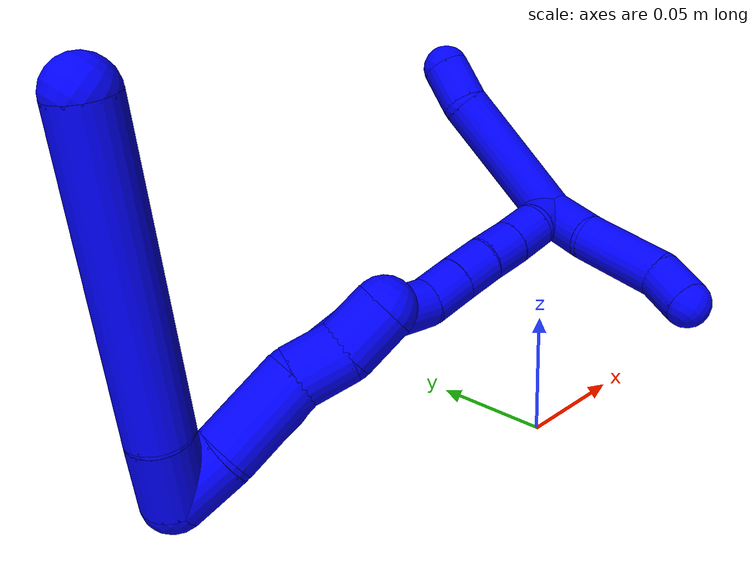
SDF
<sdf version="1.7">
 <world name="default">
  <model name="1">
   <static>0</static>
   <link name="1">
    <collision name="collision-cylinder-e_1_2_8">
     <pose>-0.011327 -0.003168 -0.008821 2.79678 -0.879542 -2.43264</pose>
     <geometry><cylinder><radius>0.0125</radius><length>0.029404</length></cylinder></geometry>
     <surface>
      <friction><ode><mu>1.16</mu><mu2>1.16</mu2><slip1>0</slip1><slip2>0</slip2></ode></friction>
      <contact><ode><kp>1e+06</kp><kd>1</kd><max_vel>0</max_vel><min_depth>0.001</min_depth></ode></contact>
     </surface>
    </collision>
    <visual name="visual-cylinder-e_1_2_8">
     <pose>-0.011327 -0.003168 -0.008821 2.79678 -0.879542 -2.43264</pose>
     <geometry><cylinder><radius>0.0125</radius><length>0.029404</length></cylinder></geometry>
     <material><ambient>0 0 1 1</ambient></material>
    </visual>
    <collision name="collision-cylinder-e_2_8_6">
     <pose>-0.064892 -0.025072 -0.056382 2.69113 -0.776067 -2.11982</pose>
     <geometry><cylinder><radius>0.0125</radius><length>0.120596</length></cylinder></geometry>
     <surface>
      <friction><ode><mu>1.16</mu><mu2>1.16</mu2><slip1>0</slip1><slip2>0</slip2></ode></friction>
      <contact><ode><kp>1e+06</kp><kd>1</kd><max_vel>0</max_vel><min_depth>0.001</min_depth></ode></contact>
     </surface>
    </collision>
    <visual name="visual-cylinder-e_2_8_6">
     <pose>-0.064892 -0.025072 -0.056382 2.69113 -0.776067 -2.11982</pose>
     <geometry><cylinder><radius>0.0125</radius><length>0.120596</length></cylinder></geometry>
     <material><ambient>0 0 1 1</ambient></material>
    </visual>
    <collision name="collision-cylinder-e_1_2_9">
     <pose>0.000558 0.002998 -0.011021 -2.87596 0.048785 -0.361239</pose>
     <geometry><cylinder><radius>0.0125</radius><length>0.02287</length></cylinder></geometry>
     <surface>
      <friction><ode><mu>1.16</mu><mu2>1.16</mu2><slip1>0</slip1><slip2>0</slip2></ode></friction>
      <contact><ode><kp>1e+06</kp><kd>1</kd><max_vel>0</max_vel><min_depth>0.001</min_depth></ode></contact>
     </surface>
    </collision>
    <visual name="visual-cylinder-e_1_2_9">
     <pose>0.000558 0.002998 -0.011021 -2.87596 0.048785 -0.361239</pose>
     <geometry><cylinder><radius>0.0125</radius><length>0.02287</length></cylinder></geometry>
     <material><ambient>0 0 1 1</ambient></material>
    </visual>
    <collision name="collision-cylinder-e_2_9_10">
     <pose>0.003449 0.007961 -0.039647 -3.03045 0.130971 -1.73466</pose>
     <geometry><cylinder><radius>0.0125</radius><length>0.035735</length></cylinder></geometry>
     <surface>
      <friction><ode><mu>1.16</mu><mu2>1.16</mu2><slip1>0</slip1><slip2>0</slip2></ode></friction>
      <contact><ode><kp>1e+06</kp><kd>1</kd><max_vel>0</max_vel><min_depth>0.001</min_depth></ode></contact>
     </surface>
    </collision>
    <visual name="visual-cylinder-e_2_9_10">
     <pose>0.003449 0.007961 -0.039647 -3.03045 0.130971 -1.73466</pose>
     <geometry><cylinder><radius>0.0125</radius><length>0.035735</length></cylinder></geometry>
     <material><ambient>0 0 1 1</ambient></material>
    </visual>
    <collision name="collision-cylinder-e_3_10_11">
     <pose>0.008307 0.013971 -0.06625 -2.71914 0.250564 -1.06213</pose>
     <geometry><cylinder><radius>0.0125</radius><length>0.020366</length></cylinder></geometry>
     <surface>
      <friction><ode><mu>1.16</mu><mu2>1.16</mu2><slip1>0</slip1><slip2>0</slip2></ode></friction>
      <contact><ode><kp>1e+06</kp><kd>1</kd><max_vel>0</max_vel><min_depth>0.001</min_depth></ode></contact>
     </surface>
    </collision>
    <visual name="visual-cylinder-e_3_10_11">
     <pose>0.008307 0.013971 -0.06625 -2.71914 0.250564 -1.06213</pose>
     <geometry><cylinder><radius>0.0125</radius><length>0.020366</length></cylinder></geometry>
     <material><ambient>0 0 1 1</ambient></material>
    </visual>
    <collision name="collision-cylinder-e_4_11_5">
     <pose>0.011007 0.019947 -0.085582 -2.95686 0.016603 -0.178769</pose>
     <geometry><cylinder><radius>0.0125</radius><length>0.021029</length></cylinder></geometry>
     <surface>
      <friction><ode><mu>1.16</mu><mu2>1.16</mu2><slip1>0</slip1><slip2>0</slip2></ode></friction>
      <contact><ode><kp>1e+06</kp><kd>1</kd><max_vel>0</max_vel><min_depth>0.001</min_depth></ode></contact>
     </surface>
    </collision>
    <visual name="visual-cylinder-e_4_11_5">
     <pose>0.011007 0.019947 -0.085582 -2.95686 0.016603 -0.178769</pose>
     <geometry><cylinder><radius>0.0125</radius><length>0.021029</length></cylinder></geometry>
     <material><ambient>0 0 1 1</ambient></material>
    </visual>
    <collision name="collision-cylinder-e_1_2_12">
     <pose>0.030752 -0.00842 -0.021784 2.77278 0.921264 2.42251</pose>
     <geometry><cylinder><radius>0.0125</radius><length>0.07723</length></cylinder></geometry>
     <surface>
      <friction><ode><mu>1.16</mu><mu2>1.16</mu2><slip1>0</slip1><slip2>0</slip2></ode></friction>
      <contact><ode><kp>1e+06</kp><kd>1</kd><max_vel>0</max_vel><min_depth>0.001</min_depth></ode></contact>
     </surface>
    </collision>
    <visual name="visual-cylinder-e_1_2_12">
     <pose>0.030752 -0.00842 -0.021784 2.77278 0.921264 2.42251</pose>
     <geometry><cylinder><radius>0.0125</radius><length>0.07723</length></cylinder></geometry>
     <material><ambient>0 0 1 1</ambient></material>
    </visual>
    <collision name="collision-cylinder-e_2_12_13">
     <pose>0.070713 -0.021024 -0.050419 2.59328 0.853903 2.03421</pose>
     <geometry><cylinder><radius>0.0125</radius><length>0.024434</length></cylinder></geometry>
     <surface>
      <friction><ode><mu>1.16</mu><mu2>1.16</mu2><slip1>0</slip1><slip2>0</slip2></ode></friction>
      <contact><ode><kp>1e+06</kp><kd>1</kd><max_vel>0</max_vel><min_depth>0.001</min_depth></ode></contact>
     </surface>
    </collision>
    <visual name="visual-cylinder-e_2_12_13">
     <pose>0.070713 -0.021024 -0.050419 2.59328 0.853903 2.03421</pose>
     <geometry><cylinder><radius>0.0125</radius><length>0.024434</length></cylinder></geometry>
     <material><ambient>0 0 1 1</ambient></material>
    </visual>
    <collision name="collision-cylinder-e_3_13_14">
     <pose>0.099831 -0.029764 -0.072595 2.8526 0.89416 2.55228</pose>
     <geometry><cylinder><radius>0.0125</radius><length>0.051065</length></cylinder></geometry>
     <surface>
      <friction><ode><mu>1.16</mu><mu2>1.16</mu2><slip1>0</slip1><slip2>0</slip2></ode></friction>
      <contact><ode><kp>1e+06</kp><kd>1</kd><max_vel>0</max_vel><min_depth>0.001</min_depth></ode></contact>
     </surface>
    </collision>
    <visual name="visual-cylinder-e_3_13_14">
     <pose>0.099831 -0.029764 -0.072595 2.8526 0.89416 2.55228</pose>
     <geometry><cylinder><radius>0.0125</radius><length>0.051065</length></cylinder></geometry>
     <material><ambient>0 0 1 1</ambient></material>
    </visual>
    <collision name="collision-cylinder-e_4_14_15">
     <pose>0.127352 -0.032926 -0.09467 -2.93785 0.835062 -2.68863</pose>
     <geometry><cylinder><radius>0.0125</radius><length>0.02054</length></cylinder></geometry>
     <surface>
      <friction><ode><mu>1.16</mu><mu2>1.16</mu2><slip1>0</slip1><slip2>0</slip2></ode></friction>
      <contact><ode><kp>1e+06</kp><kd>1</kd><max_vel>0</max_vel><min_depth>0.001</min_depth></ode></contact>
     </surface>
    </collision>
    <visual name="visual-cylinder-e_4_14_15">
     <pose>0.127352 -0.032926 -0.09467 -2.93785 0.835062 -2.68863</pose>
     <geometry><cylinder><radius>0.0125</radius><length>0.02054</length></cylinder></geometry>
     <material><ambient>0 0 1 1</ambient></material>
    </visual>
    <collision name="collision-cylinder-e_5_15_16">
     <pose>0.143402 -0.028033 -0.109983 -2.75372 0.739424 -2.20343</pose>
     <geometry><cylinder><radius>0.0125</radius><length>0.02504</length></cylinder></geometry>
     <surface>
      <friction><ode><mu>1.16</mu><mu2>1.16</mu2><slip1>0</slip1><slip2>0</slip2></ode></friction>
      <contact><ode><kp>1e+06</kp><kd>1</kd><max_vel>0</max_vel><min_depth>0.001</min_depth></ode></contact>
     </surface>
    </collision>
    <visual name="visual-cylinder-e_5_15_16">
     <pose>0.143402 -0.028033 -0.109983 -2.75372 0.739424 -2.20343</pose>
     <geometry><cylinder><radius>0.0125</radius><length>0.02504</length></cylinder></geometry>
     <material><ambient>0 0 1 1</ambient></material>
    </visual>
    <collision name="collision-cylinder-e_6_16_17">
     <pose>0.156888 -0.02316 -0.127855 -2.99512 0.492518 -2.57361</pose>
     <geometry><cylinder><radius>0.0125</radius><length>0.021357</length></cylinder></geometry>
     <surface>
      <friction><ode><mu>1.16</mu><mu2>1.16</mu2><slip1>0</slip1><slip2>0</slip2></ode></friction>
      <contact><ode><kp>1e+06</kp><kd>1</kd><max_vel>0</max_vel><min_depth>0.001</min_depth></ode></contact>
     </surface>
    </collision>
    <visual name="visual-cylinder-e_6_16_17">
     <pose>0.156888 -0.02316 -0.127855 -2.99512 0.492518 -2.57361</pose>
     <geometry><cylinder><radius>0.0125</radius><length>0.021357</length></cylinder></geometry>
     <material><ambient>0 0 1 1</ambient></material>
    </visual>
    <collision name="collision-cylinder-e_7_17_18">
     <pose>0.166838 -0.020382 -0.145853 -2.98129 0.507915 -2.54135</pose>
     <geometry><cylinder><radius>0.0125</radius><length>0.020149</length></cylinder></geometry>
     <surface>
      <friction><ode><mu>1.16</mu><mu2>1.16</mu2><slip1>0</slip1><slip2>0</slip2></ode></friction>
      <contact><ode><kp>1e+06</kp><kd>1</kd><max_vel>0</max_vel><min_depth>0.001</min_depth></ode></contact>
     </surface>
    </collision>
    <visual name="visual-cylinder-e_7_17_18">
     <pose>0.166838 -0.020382 -0.145853 -2.98129 0.507915 -2.54135</pose>
     <geometry><cylinder><radius>0.0125</radius><length>0.020149</length></cylinder></geometry>
     <material><ambient>0 0 1 1</ambient></material>
    </visual>
    <collision name="collision-cylinder-e_8_18_19">
     <pose>0.17739 -0.01769 -0.16271 -2.98524 0.599708 -2.64528</pose>
     <geometry><cylinder><radius>0.0125</radius><length>0.02003</length></cylinder></geometry>
     <surface>
      <friction><ode><mu>1.16</mu><mu2>1.16</mu2><slip1>0</slip1><slip2>0</slip2></ode></friction>
      <contact><ode><kp>1e+06</kp><kd>1</kd><max_vel>0</max_vel><min_depth>0.001</min_depth></ode></contact>
     </surface>
    </collision>
    <visual name="visual-cylinder-e_8_18_19">
     <pose>0.17739 -0.01769 -0.16271 -2.98524 0.599708 -2.64528</pose>
     <geometry><cylinder><radius>0.0125</radius><length>0.02003</length></cylinder></geometry>
     <material><ambient>0 0 1 1</ambient></material>
    </visual>
    <collision name="collision-cylinder-e_9_19_20">
     <pose>0.188462 -0.015496 -0.179234 -3.03362 0.5726 -2.77851</pose>
     <geometry><cylinder><radius>0.0125</radius><length>0.020004</length></cylinder></geometry>
     <surface>
      <friction><ode><mu>1.16</mu><mu2>1.16</mu2><slip1>0</slip1><slip2>0</slip2></ode></friction>
      <contact><ode><kp>1e+06</kp><kd>1</kd><max_vel>0</max_vel><min_depth>0.001</min_depth></ode></contact>
     </surface>
    </collision>
    <visual name="visual-cylinder-e_9_19_20">
     <pose>0.188462 -0.015496 -0.179234 -3.03362 0.5726 -2.77851</pose>
     <geometry><cylinder><radius>0.0125</radius><length>0.020004</length></cylinder></geometry>
     <material><ambient>0 0 1 1</ambient></material>
    </visual>
    <collision name="collision-cylinder-e_10_20_1">
     <pose>0.201093 -0.015 -0.194615 3.0833 0.797799 3.00346</pose>
     <geometry><cylinder><radius>0.0125</radius><length>0.020149</length></cylinder></geometry>
     <surface>
      <friction><ode><mu>1.16</mu><mu2>1.16</mu2><slip1>0</slip1><slip2>0</slip2></ode></friction>
      <contact><ode><kp>1e+06</kp><kd>1</kd><max_vel>0</max_vel><min_depth>0.001</min_depth></ode></contact>
     </surface>
    </collision>
    <visual name="visual-cylinder-e_10_20_1">
     <pose>0.201093 -0.015 -0.194615 3.0833 0.797799 3.00346</pose>
     <geometry><cylinder><radius>0.0125</radius><length>0.020149</length></cylinder></geometry>
     <material><ambient>0 0 1 1</ambient></material>
    </visual>
    <collision name="collision-cylinder-e_1_1_21">
     <pose>0.191454 -0.047464 -0.213458 1.92407 -0.45821 -0.645672</pose>
     <geometry><cylinder><radius>0.0125</radius><length>0.076187</length></cylinder></geometry>
     <surface>
      <friction><ode><mu>1.16</mu><mu2>1.16</mu2><slip1>0</slip1><slip2>0</slip2></ode></friction>
      <contact><ode><kp>1e+06</kp><kd>1</kd><max_vel>0</max_vel><min_depth>0.001</min_depth></ode></contact>
     </surface>
    </collision>
    <visual name="visual-cylinder-e_1_1_21">
     <pose>0.191454 -0.047464 -0.213458 1.92407 -0.45821 -0.645672</pose>
     <geometry><cylinder><radius>0.0125</radius><length>0.076187</length></cylinder></geometry>
     <material><ambient>0 0 1 1</ambient></material>
    </visual>
    <collision name="collision-cylinder-e_2_21_4">
     <pose>0.172364 -0.089523 -0.231331 2.11492 -0.189191 -0.333476</pose>
     <geometry><cylinder><radius>0.0125</radius><length>0.023813</length></cylinder></geometry>
     <surface>
      <friction><ode><mu>1.16</mu><mu2>1.16</mu2><slip1>0</slip1><slip2>0</slip2></ode></friction>
      <contact><ode><kp>1e+06</kp><kd>1</kd><max_vel>0</max_vel><min_depth>0.001</min_depth></ode></contact>
     </surface>
    </collision>
    <visual name="visual-cylinder-e_2_21_4">
     <pose>0.172364 -0.089523 -0.231331 2.11492 -0.189191 -0.333476</pose>
     <geometry><cylinder><radius>0.0125</radius><length>0.023813</length></cylinder></geometry>
     <material><ambient>0 0 1 1</ambient></material>
    </visual>
    <collision name="collision-cylinder-e_1_1_22">
     <pose>0.202543 -0.00066 -0.199328 -1.41545 -0.368291 0.316056</pose>
     <geometry><cylinder><radius>0.0125</radius><length>0.032007</length></cylinder></geometry>
     <surface>
      <friction><ode><mu>1.16</mu><mu2>1.16</mu2><slip1>0</slip1><slip2>0</slip2></ode></friction>
      <contact><ode><kp>1e+06</kp><kd>1</kd><max_vel>0</max_vel><min_depth>0.001</min_depth></ode></contact>
     </surface>
    </collision>
    <visual name="visual-cylinder-e_1_1_22">
     <pose>0.202543 -0.00066 -0.199328 -1.41545 -0.368291 0.316056</pose>
     <geometry><cylinder><radius>0.0125</radius><length>0.032007</length></cylinder></geometry>
     <material><ambient>0 0 1 1</ambient></material>
    </visual>
    <collision name="collision-cylinder-e_2_22_23">
     <pose>0.193293 0.036644 -0.1965 -1.54784 -0.153424 0.149955</pose>
     <geometry><cylinder><radius>0.0125</radius><length>0.045654</length></cylinder></geometry>
     <surface>
      <friction><ode><mu>1.16</mu><mu2>1.16</mu2><slip1>0</slip1><slip2>0</slip2></ode></friction>
      <contact><ode><kp>1e+06</kp><kd>1</kd><max_vel>0</max_vel><min_depth>0.001</min_depth></ode></contact>
     </surface>
    </collision>
    <visual name="visual-cylinder-e_2_22_23">
     <pose>0.193293 0.036644 -0.1965 -1.54784 -0.153424 0.149955</pose>
     <geometry><cylinder><radius>0.0125</radius><length>0.045654</length></cylinder></geometry>
     <material><ambient>0 0 1 1</ambient></material>
    </visual>
    <collision name="collision-cylinder-e_3_23_3">
     <pose>0.187127 0.069414 -0.19235 -1.22924 -0.241994 0.171222</pose>
     <geometry><cylinder><radius>0.0125</radius><length>0.02234</length></cylinder></geometry>
     <surface>
      <friction><ode><mu>1.16</mu><mu2>1.16</mu2><slip1>0</slip1><slip2>0</slip2></ode></friction>
      <contact><ode><kp>1e+06</kp><kd>1</kd><max_vel>0</max_vel><min_depth>0.001</min_depth></ode></contact>
     </surface>
    </collision>
    <visual name="visual-cylinder-e_3_23_3">
     <pose>0.187127 0.069414 -0.19235 -1.22924 -0.241994 0.171222</pose>
     <geometry><cylinder><radius>0.0125</radius><length>0.02234</length></cylinder></geometry>
     <material><ambient>0 0 1 1</ambient></material>
    </visual>
    <collision name="collision-sphere-3">
     <pose>0.184451 0.079632 -0.188717 0 -0 0</pose>
     <geometry><sphere><radius>0.0125</radius></sphere></geometry>
     <surface>
      <friction><ode><mu>1.16</mu><mu2>1.16</mu2><slip1>0</slip1><slip2>0</slip2></ode></friction>
      <contact><ode><kp>1e+06</kp><kd>1</kd><max_vel>0</max_vel><min_depth>0.001</min_depth></ode></contact>
     </surface>
    </collision>
    <visual name="visual-sphere-3">
     <pose>0.184451 0.079632 -0.188717 0 -0 0</pose>
     <geometry><sphere><radius>0.0125</radius></sphere></geometry>
     <material><ambient>0 0 1 1</ambient></material>
    </visual>
    <collision name="collision-sphere-23">
     <pose>0.189804 0.059196 -0.195982 0 -0 0</pose>
     <geometry><sphere><radius>0.0125</radius></sphere></geometry>
     <surface>
      <friction><ode><mu>1.16</mu><mu2>1.16</mu2><slip1>0</slip1><slip2>0</slip2></ode></friction>
      <contact><ode><kp>1e+06</kp><kd>1</kd><max_vel>0</max_vel><min_depth>0.001</min_depth></ode></contact>
     </surface>
    </collision>
    <visual name="visual-sphere-23">
     <pose>0.189804 0.059196 -0.195982 0 -0 0</pose>
     <geometry><sphere><radius>0.0125</radius></sphere></geometry>
     <material><ambient>0 0 1 1</ambient></material>
    </visual>
    <collision name="collision-sphere-22">
     <pose>0.196781 0.014091 -0.197018 0 -0 0</pose>
     <geometry><sphere><radius>0.0125</radius></sphere></geometry>
     <surface>
      <friction><ode><mu>1.16</mu><mu2>1.16</mu2><slip1>0</slip1><slip2>0</slip2></ode></friction>
      <contact><ode><kp>1e+06</kp><kd>1</kd><max_vel>0</max_vel><min_depth>0.001</min_depth></ode></contact>
     </surface>
    </collision>
    <visual name="visual-sphere-22">
     <pose>0.196781 0.014091 -0.197018 0 -0 0</pose>
     <geometry><sphere><radius>0.0125</radius></sphere></geometry>
     <material><ambient>0 0 1 1</ambient></material>
    </visual>
    <collision name="collision-sphere-4">
     <pose>0.170125 -0.099529 -0.237385 0 -0 0</pose>
     <geometry><sphere><radius>0.0125</radius></sphere></geometry>
     <surface>
      <friction><ode><mu>1.16</mu><mu2>1.16</mu2><slip1>0</slip1><slip2>0</slip2></ode></friction>
      <contact><ode><kp>1e+06</kp><kd>1</kd><max_vel>0</max_vel><min_depth>0.001</min_depth></ode></contact>
     </surface>
    </collision>
    <visual name="visual-sphere-4">
     <pose>0.170125 -0.099529 -0.237385 0 -0 0</pose>
     <geometry><sphere><radius>0.0125</radius></sphere></geometry>
     <material><ambient>0 0 1 1</ambient></material>
    </visual>
    <collision name="collision-sphere-21">
     <pose>0.174604 -0.079518 -0.225278 0 -0 0</pose>
     <geometry><sphere><radius>0.0125</radius></sphere></geometry>
     <surface>
      <friction><ode><mu>1.16</mu><mu2>1.16</mu2><slip1>0</slip1><slip2>0</slip2></ode></friction>
      <contact><ode><kp>1e+06</kp><kd>1</kd><max_vel>0</max_vel><min_depth>0.001</min_depth></ode></contact>
     </surface>
    </collision>
    <visual name="visual-sphere-21">
     <pose>0.174604 -0.079518 -0.225278 0 -0 0</pose>
     <geometry><sphere><radius>0.0125</radius></sphere></geometry>
     <material><ambient>0 0 1 1</ambient></material>
    </visual>
    <collision name="collision-sphere-1">
     <pose>0.208304 -0.01541 -0.201638 0 -0 0</pose>
     <geometry><sphere><radius>0.0125</radius></sphere></geometry>
     <surface>
      <friction><ode><mu>1.16</mu><mu2>1.16</mu2><slip1>0</slip1><slip2>0</slip2></ode></friction>
      <contact><ode><kp>1e+06</kp><kd>1</kd><max_vel>0</max_vel><min_depth>0.001</min_depth></ode></contact>
     </surface>
    </collision>
    <visual name="visual-sphere-1">
     <pose>0.208304 -0.01541 -0.201638 0 -0 0</pose>
     <geometry><sphere><radius>0.0125</radius></sphere></geometry>
     <material><ambient>0 0 1 1</ambient></material>
    </visual>
    <collision name="collision-sphere-11">
     <pose>0.010832 0.018016 -0.075248 0 -0 0</pose>
     <geometry><sphere><radius>0.0125</radius></sphere></geometry>
     <surface>
      <friction><ode><mu>1.16</mu><mu2>1.16</mu2><slip1>0</slip1><slip2>0</slip2></ode></friction>
      <contact><ode><kp>1e+06</kp><kd>1</kd><max_vel>0</max_vel><min_depth>0.001</min_depth></ode></contact>
     </surface>
    </collision>
    <visual name="visual-sphere-11">
     <pose>0.010832 0.018016 -0.075248 0 -0 0</pose>
     <geometry><sphere><radius>0.0125</radius></sphere></geometry>
     <material><ambient>0 0 1 1</ambient></material>
    </visual>
    <collision name="collision-sphere-10">
     <pose>0.005782 0.009926 -0.057252 0 -0 0</pose>
     <geometry><sphere><radius>0.0125</radius></sphere></geometry>
     <surface>
      <friction><ode><mu>1.16</mu><mu2>1.16</mu2><slip1>0</slip1><slip2>0</slip2></ode></friction>
      <contact><ode><kp>1e+06</kp><kd>1</kd><max_vel>0</max_vel><min_depth>0.001</min_depth></ode></contact>
     </surface>
    </collision>
    <visual name="visual-sphere-10">
     <pose>0.005782 0.009926 -0.057252 0 -0 0</pose>
     <geometry><sphere><radius>0.0125</radius></sphere></geometry>
     <material><ambient>0 0 1 1</ambient></material>
    </visual>
    <collision name="collision-sphere-6">
     <pose>-0.107129 -0.043808 -0.095123 0 -0 0</pose>
     <geometry><sphere><radius>0.0125</radius></sphere></geometry>
     <surface>
      <friction><ode><mu>1.16</mu><mu2>1.16</mu2><slip1>0</slip1><slip2>0</slip2></ode></friction>
      <contact><ode><kp>1e+06</kp><kd>1</kd><max_vel>0</max_vel><min_depth>0.001</min_depth></ode></contact>
     </surface>
    </collision>
    <visual name="visual-sphere-6">
     <pose>-0.107129 -0.043808 -0.095123 0 -0 0</pose>
     <geometry><sphere><radius>0.0125</radius></sphere></geometry>
     <material><ambient>0 0 1 1</ambient></material>
    </visual>
    <collision name="collision-sphere-9">
     <pose>0.001115 0.005997 -0.022042 0 -0 0</pose>
     <geometry><sphere><radius>0.0125</radius></sphere></geometry>
     <surface>
      <friction><ode><mu>1.16</mu><mu2>1.16</mu2><slip1>0</slip1><slip2>0</slip2></ode></friction>
      <contact><ode><kp>1e+06</kp><kd>1</kd><max_vel>0</max_vel><min_depth>0.001</min_depth></ode></contact>
     </surface>
    </collision>
    <visual name="visual-sphere-9">
     <pose>0.001115 0.005997 -0.022042 0 -0 0</pose>
     <geometry><sphere><radius>0.0125</radius></sphere></geometry>
     <material><ambient>0 0 1 1</ambient></material>
    </visual>
    <collision name="collision-sphere-2">
     <geometry><sphere><radius>0.0125</radius></sphere></geometry>
     <surface>
      <friction><ode><mu>1.16</mu><mu2>1.16</mu2><slip1>0</slip1><slip2>0</slip2></ode></friction>
      <contact><ode><kp>1e+06</kp><kd>1</kd><max_vel>0</max_vel><min_depth>0.001</min_depth></ode></contact>
     </surface>
    </collision>
    <visual name="visual-sphere-2">
     <geometry><sphere><radius>0.0125</radius></sphere></geometry>
     <material><ambient>0 0 1 1</ambient></material>
    </visual>
    <collision name="collision-sphere-19">
     <pose>0.183042 -0.016402 -0.170877 0 -0 0</pose>
     <geometry><sphere><radius>0.0125</radius></sphere></geometry>
     <surface>
      <friction><ode><mu>1.16</mu><mu2>1.16</mu2><slip1>0</slip1><slip2>0</slip2></ode></friction>
      <contact><ode><kp>1e+06</kp><kd>1</kd><max_vel>0</max_vel><min_depth>0.001</min_depth></ode></contact>
     </surface>
    </collision>
    <visual name="visual-sphere-19">
     <pose>0.183042 -0.016402 -0.170877 0 -0 0</pose>
     <geometry><sphere><radius>0.0125</radius></sphere></geometry>
     <material><ambient>0 0 1 1</ambient></material>
    </visual>
    <collision name="collision-sphere-8">
     <pose>-0.022655 -0.006336 -0.017642 0 -0 0</pose>
     <geometry><sphere><radius>0.0125</radius></sphere></geometry>
     <surface>
      <friction><ode><mu>1.16</mu><mu2>1.16</mu2><slip1>0</slip1><slip2>0</slip2></ode></friction>
      <contact><ode><kp>1e+06</kp><kd>1</kd><max_vel>0</max_vel><min_depth>0.001</min_depth></ode></contact>
     </surface>
    </collision>
    <visual name="visual-sphere-8">
     <pose>-0.022655 -0.006336 -0.017642 0 -0 0</pose>
     <geometry><sphere><radius>0.0125</radius></sphere></geometry>
     <material><ambient>0 0 1 1</ambient></material>
    </visual>
    <collision name="collision-sphere-5">
     <pose>0.011181 0.021878 -0.095916 0 -0 0</pose>
     <geometry><sphere><radius>0.0125</radius></sphere></geometry>
     <surface>
      <friction><ode><mu>1.16</mu><mu2>1.16</mu2><slip1>0</slip1><slip2>0</slip2></ode></friction>
      <contact><ode><kp>1e+06</kp><kd>1</kd><max_vel>0</max_vel><min_depth>0.001</min_depth></ode></contact>
     </surface>
    </collision>
    <visual name="visual-sphere-5">
     <pose>0.011181 0.021878 -0.095916 0 -0 0</pose>
     <geometry><sphere><radius>0.0125</radius></sphere></geometry>
     <material><ambient>0 0 1 1</ambient></material>
    </visual>
    <collision name="collision-sphere-12">
     <pose>0.061503 -0.016839 -0.043569 0 -0 0</pose>
     <geometry><sphere><radius>0.0125</radius></sphere></geometry>
     <surface>
      <friction><ode><mu>1.16</mu><mu2>1.16</mu2><slip1>0</slip1><slip2>0</slip2></ode></friction>
      <contact><ode><kp>1e+06</kp><kd>1</kd><max_vel>0</max_vel><min_depth>0.001</min_depth></ode></contact>
     </surface>
    </collision>
    <visual name="visual-sphere-12">
     <pose>0.061503 -0.016839 -0.043569 0 -0 0</pose>
     <geometry><sphere><radius>0.0125</radius></sphere></geometry>
     <material><ambient>0 0 1 1</ambient></material>
    </visual>
    <collision name="collision-sphere-13">
     <pose>0.079923 -0.025208 -0.05727 0 -0 0</pose>
     <geometry><sphere><radius>0.0125</radius></sphere></geometry>
     <surface>
      <friction><ode><mu>1.16</mu><mu2>1.16</mu2><slip1>0</slip1><slip2>0</slip2></ode></friction>
      <contact><ode><kp>1e+06</kp><kd>1</kd><max_vel>0</max_vel><min_depth>0.001</min_depth></ode></contact>
     </surface>
    </collision>
    <visual name="visual-sphere-13">
     <pose>0.079923 -0.025208 -0.05727 0 -0 0</pose>
     <geometry><sphere><radius>0.0125</radius></sphere></geometry>
     <material><ambient>0 0 1 1</ambient></material>
    </visual>
    <collision name="collision-sphere-14">
     <pose>0.119738 -0.034321 -0.08792 0 -0 0</pose>
     <geometry><sphere><radius>0.0125</radius></sphere></geometry>
     <surface>
      <friction><ode><mu>1.16</mu><mu2>1.16</mu2><slip1>0</slip1><slip2>0</slip2></ode></friction>
      <contact><ode><kp>1e+06</kp><kd>1</kd><max_vel>0</max_vel><min_depth>0.001</min_depth></ode></contact>
     </surface>
    </collision>
    <visual name="visual-sphere-14">
     <pose>0.119738 -0.034321 -0.08792 0 -0 0</pose>
     <geometry><sphere><radius>0.0125</radius></sphere></geometry>
     <material><ambient>0 0 1 1</ambient></material>
    </visual>
    <collision name="collision-sphere-15">
     <pose>0.134965 -0.031531 -0.10142 0 -0 0</pose>
     <geometry><sphere><radius>0.0125</radius></sphere></geometry>
     <surface>
      <friction><ode><mu>1.16</mu><mu2>1.16</mu2><slip1>0</slip1><slip2>0</slip2></ode></friction>
      <contact><ode><kp>1e+06</kp><kd>1</kd><max_vel>0</max_vel><min_depth>0.001</min_depth></ode></contact>
     </surface>
    </collision>
    <visual name="visual-sphere-15">
     <pose>0.134965 -0.031531 -0.10142 0 -0 0</pose>
     <geometry><sphere><radius>0.0125</radius></sphere></geometry>
     <material><ambient>0 0 1 1</ambient></material>
    </visual>
    <collision name="collision-sphere-16">
     <pose>0.151839 -0.024534 -0.118546 0 -0 0</pose>
     <geometry><sphere><radius>0.0125</radius></sphere></geometry>
     <surface>
      <friction><ode><mu>1.16</mu><mu2>1.16</mu2><slip1>0</slip1><slip2>0</slip2></ode></friction>
      <contact><ode><kp>1e+06</kp><kd>1</kd><max_vel>0</max_vel><min_depth>0.001</min_depth></ode></contact>
     </surface>
    </collision>
    <visual name="visual-sphere-16">
     <pose>0.151839 -0.024534 -0.118546 0 -0 0</pose>
     <geometry><sphere><radius>0.0125</radius></sphere></geometry>
     <material><ambient>0 0 1 1</ambient></material>
    </visual>
    <collision name="collision-sphere-17">
     <pose>0.161938 -0.021787 -0.137163 0 -0 0</pose>
     <geometry><sphere><radius>0.0125</radius></sphere></geometry>
     <surface>
      <friction><ode><mu>1.16</mu><mu2>1.16</mu2><slip1>0</slip1><slip2>0</slip2></ode></friction>
      <contact><ode><kp>1e+06</kp><kd>1</kd><max_vel>0</max_vel><min_depth>0.001</min_depth></ode></contact>
     </surface>
    </collision>
    <visual name="visual-sphere-17">
     <pose>0.161938 -0.021787 -0.137163 0 -0 0</pose>
     <geometry><sphere><radius>0.0125</radius></sphere></geometry>
     <material><ambient>0 0 1 1</ambient></material>
    </visual>
    <collision name="collision-sphere-18">
     <pose>0.171737 -0.018977 -0.154544 0 -0 0</pose>
     <geometry><sphere><radius>0.0125</radius></sphere></geometry>
     <surface>
      <friction><ode><mu>1.16</mu><mu2>1.16</mu2><slip1>0</slip1><slip2>0</slip2></ode></friction>
      <contact><ode><kp>1e+06</kp><kd>1</kd><max_vel>0</max_vel><min_depth>0.001</min_depth></ode></contact>
     </surface>
    </collision>
    <visual name="visual-sphere-18">
     <pose>0.171737 -0.018977 -0.154544 0 -0 0</pose>
     <geometry><sphere><radius>0.0125</radius></sphere></geometry>
     <material><ambient>0 0 1 1</ambient></material>
    </visual>
    <collision name="collision-sphere-20">
     <pose>0.193881 -0.01459 -0.187592 0 -0 0</pose>
     <geometry><sphere><radius>0.0125</radius></sphere></geometry>
     <surface>
      <friction><ode><mu>1.16</mu><mu2>1.16</mu2><slip1>0</slip1><slip2>0</slip2></ode></friction>
      <contact><ode><kp>1e+06</kp><kd>1</kd><max_vel>0</max_vel><min_depth>0.001</min_depth></ode></contact>
     </surface>
    </collision>
    <visual name="visual-sphere-20">
     <pose>0.193881 -0.01459 -0.187592 0 -0 0</pose>
     <geometry><sphere><radius>0.0125</radius></sphere></geometry>
     <material><ambient>0 0 1 1</ambient></material>
    </visual>
    <inertial>
     <pose>0.085401 -0.014052 -0.108068 0 -0 0</pose>
     <mass>0.75</mass>
     <inertia>
      <ixx>-0.000141</ixx>
      <ixy>0</ixy>
      <ixz>0</ixz>
      <iyy>6.7e-05</iyy>
      <iyz>0</iyz>
      <izz>0.000121</izz>
     </inertia>
    </inertial>
   </link>
   <pose>-0.140721 0.053455 0.013525 -2.75867 0.675783 0.373811</pose>
  </model>
 </world>
</sdf>
